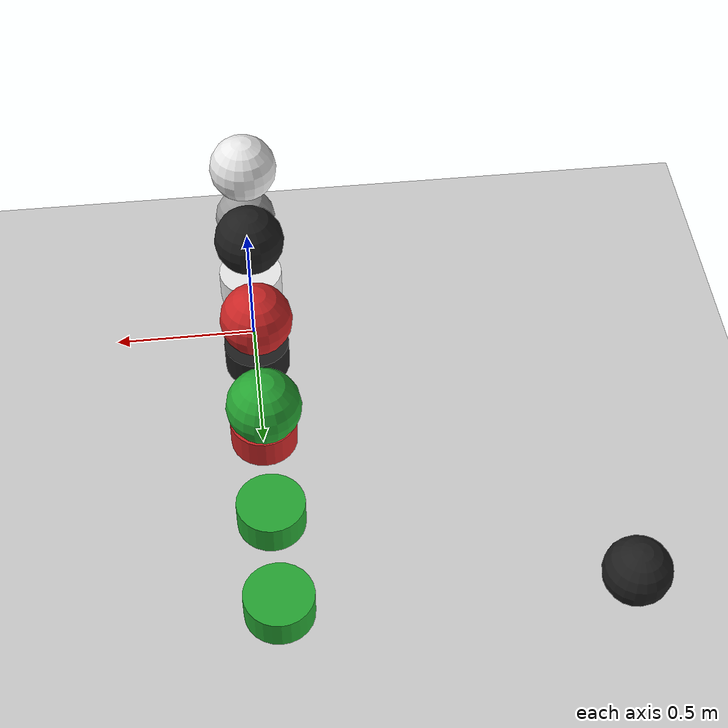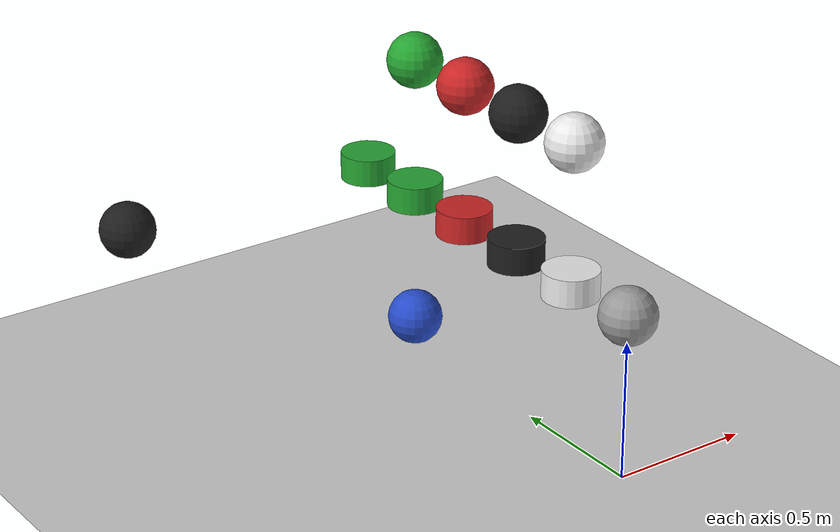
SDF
<?xml version="1.0" ?>
<sdf version="1.4">
  <world name="default">
    <scene>
      <ambient>0.5 0.5 0.5 1</ambient>
      <background>0.5 0.5 0.5 1</background>
      <shadows>false</shadows>
    </scene>
    <include>
      <uri>model://sun</uri>
    </include>
    <include>
      <uri>model://ground_plane</uri>
    </include>
    <physics type="ode">
      <gravity>0.0 0.0 -10.0</gravity>
      <ode>
        <solver>
          <type>quick</type>
          <iters>100</iters>
          <sor>1.3</sor>
        </solver>
        <constraints>
          <cfm>0.0</cfm>
          <erp>1.0</erp>
          <contact_max_correcting_vel>10000.0</contact_max_correcting_vel>
          <contact_surface_layer>0.0</contact_surface_layer>
        </constraints>
      </ode>
      <simbody>
        <accuracy>0.01</accuracy>
        <max_transient_velocity>0.01</max_transient_velocity>
        <contact>
          <stiffness>111.111</stiffness>
          <dissipation>0</dissipation>
        </contact>
      </simbody>
      <real_time_update_rate>0</real_time_update_rate>
      <max_step_size>0.001</max_step_size>
    </physics>
    <model name="model_0">
      <pose>0.0 0.0 1.1 0 0.0 0.0</pose>
      <link name="link_1">
        <velocity_decay>
          <linear>0.0</linear>
          <angular>0.0</angular>
        </velocity_decay>
        <pose>0.0 0.0 0.0 0.0 0.0 0.0</pose>
        <inertial>
          <pose>0.0 0.0 -0.5 0.0 0.0 0.0</pose>
          <inertia>
            <ixx>0.01</ixx>
            <ixy>0.0</ixy>
            <ixz>0.0</ixz>
            <iyy>0.01</iyy>
            <iyz>0.0</iyz>
            <izz>0.01</izz>
          </inertia>
          <mass>1.0</mass>
        </inertial>
        <visual name="visual_sphere">
          <pose>0.0 0.0 -0.5 0.0 0.0 0.0</pose>
          <geometry>
            <sphere>
              <radius>0.1</radius>
            </sphere>
          </geometry>
          <material>
            <script><uri>file://media/materials/scripts/gazebo.material</uri><name>Gazebo/Grey</name></script>
          </material>
        </visual>
        <collision name="collision_sphere">
          <pose>0.0 0.0 -0.5 0.0 0.0 0.0</pose>
          <max_contacts>250</max_contacts>
          <geometry>
            <sphere>
              <radius>0.1</radius>
            </sphere>
          </geometry>
        </collision>
        <gravity>true</gravity>
        <self_collide>true</self_collide>
        <kinematic>false</kinematic>
      </link>
      <joint name="joint_0" type="prismatic">
        <parent>world</parent>
        <child>link_1</child>
        <pose>0.0 0.0 0.0 0.0 0.0 0.0</pose>
        <axis>
          <limit>
            <lower>0</lower>
            <upper>0</upper>
            <stiffness>1.0e6</stiffness>
            <dissipation>0</dissipation>
          </limit>
          <xyz>0.0 0.0 1.0</xyz>
        </axis>
        <physics>
          <ode>
            <limit>
              <cfm>0.0</cfm>
              <erp>0.2</erp>
            </limit>
          </ode>
        </physics>
      </joint>
      <static>false</static>
    </model>
    <model name="model_1_prismatic">
      <pose>0.0 0.3 1.1 0 0.0 0.0</pose>
      <link name="link_1">
        <velocity_decay>
          <linear>0.0</linear>
          <angular>0.0</angular>
        </velocity_decay>
        <pose>0.0 0.0 0.0 0.0 0.0 0.0</pose>
        <inertial>
          <pose>0.0 0.0 -0.5 0.0 0.0 0.0</pose>
          <inertia>
            <ixx>0.01</ixx>
            <ixy>0.0</ixy>
            <ixz>0.0</ixz>
            <iyy>0.01</iyy>
            <iyz>0.0</iyz>
            <izz>0.01</izz>
          </inertia>
          <mass>1.0</mass>
        </inertial>
        <visual name="visual_cylinder">
          <pose>0.0 0.0 -0.5 0.0 0.0 0.0</pose>
          <geometry>
            <cylinder>
              <length>0.1</length>
              <radius>0.1</radius>
            </cylinder>
          </geometry>
          <material>
            <script><uri>file://media/materials/scripts/gazebo.material</uri><name>Gazebo/White</name></script>
          </material>
        </visual>
        <collision name="collision_cylinder">
          <pose>0.0 0.0 -0.5 0.0 0.0 0.0</pose>
          <max_contacts>250</max_contacts>
          <geometry>
            <cylinder>
              <length>0.1</length>
              <radius>0.1</radius>
            </cylinder>
          </geometry>
        </collision>
        <gravity>true</gravity>
        <self_collide>true</self_collide>
        <kinematic>false</kinematic>
      </link>
      <joint name="joint_0" type="prismatic">
        <parent>world</parent>
        <child>link_1</child>
        <pose>0.0 0.0 0.0 0.0 0.0 0.0</pose>
        <axis>
          <limit>
            <lower>0.0</lower>
            <upper>0.0</upper>
            <stiffness>333.3333</stiffness>
            <dissipation>0</dissipation>
          </limit>
          <xyz>0.0 0.0 1.0</xyz>
        </axis>
        <physics>
          <ode>
            <limit>
              <cfm>3.0</cfm>
              <erp>1.0</erp>
            </limit>
          </ode>
        </physics>
      </joint>
      <static>false</static>
    </model>
    <model name="model_1_revolute">
      <pose>-1.0 0.3 1.1 0 0.0 0.0</pose>
      <link name="link_1">
        <velocity_decay>
          <linear>0.0</linear>
          <angular>0.0</angular>
        </velocity_decay>
        <pose>0.0 0.0 0.0 0.0 0.0 0.0</pose>
        <inertial>
          <pose>1.0 0.0 0 0.0 0.0 0.0</pose>
          <inertia>
            <ixx>0.0001</ixx>
            <ixy>0.0</ixy>
            <ixz>0.0</ixz>
            <iyy>0.0001</iyy>
            <iyz>0.0</iyz>
            <izz>0.0001</izz>
          </inertia>
          <mass>1.0</mass>
        </inertial>
        <visual name="visual_sphere">
          <pose>1.0 0.0 0 0.0 0.0 0.0</pose>
          <geometry>
            <sphere>
              <radius>0.1</radius>
            </sphere>
          </geometry>
          <material>
            <script><uri>file://media/materials/scripts/gazebo.material</uri><name>Gazebo/White</name></script>
          </material>
        </visual>
        <collision name="collision_sphere">
          <pose>1.0 0.0 0 0.0 0.0 0.0</pose>
          <max_contacts>250</max_contacts>
          <geometry>
            <sphere>
              <radius>0.1</radius>
            </sphere>
          </geometry>
        </collision>
        <gravity>true</gravity>
        <self_collide>true</self_collide>
        <kinematic>false</kinematic>
      </link>
      <joint name="joint_0" type="revolute">
        <parent>world</parent>
        <child>link_1</child>
        <pose>0.0 0.0 0.0 0.0 0.0 0.0</pose>
        <axis>
          <limit>
            <lower>0.0</lower>
            <upper>0.0</upper>
            <stiffness>333.3333</stiffness>
            <dissipation>0</dissipation>
          </limit>
          <xyz>0.0 1.0 0.0</xyz>
        </axis>
        <physics>
          <ode>
            <limit>
              <cfm>3.0</cfm>
              <erp>1.0</erp>
            </limit>
          </ode>
        </physics>
      </joint>
      <static>false</static>
    </model>
    <model name="model_2_prismatic">
      <pose>0.0 0.6 1.1 0 0.0 0.0</pose>
      <link name="link_1">
        <pose>0.0 0.0 0.0 0.0 0.0 0.0</pose>
        <inertial>
          <pose>0.0 0.0 -0.5 0.0 0.0 0.0</pose>
          <inertia>
            <ixx>0.01</ixx>
            <ixy>0.0</ixy>
            <ixz>0.0</ixz>
            <iyy>0.01</iyy>
            <iyz>0.0</iyz>
            <izz>0.01</izz>
          </inertia>
          <mass>1.0</mass>
        </inertial>
        <visual name="visual_cylinder">
          <pose>0.0 0.0 -0.5 0.0 0.0 0.0</pose>
          <geometry>
            <cylinder>
              <length>0.1</length>
              <radius>0.1</radius>
            </cylinder>
          </geometry>
          <material>
            <script><uri>file://media/materials/scripts/gazebo.material</uri><name>Gazebo/FlatBlack</name></script>
          </material>
        </visual>
        <collision name="collision_cylinder">
          <pose>0.0 0.0 -0.5 0.0 0.0 0.0</pose>
          <max_contacts>250</max_contacts>
          <geometry>
            <cylinder>
              <length>0.1</length>
              <radius>0.1</radius>
            </cylinder>
          </geometry>
        </collision>
        <gravity>true</gravity>
        <self_collide>true</self_collide>
        <kinematic>false</kinematic>
      </link>
      <joint name="joint_0" type="prismatic">
        <parent>world</parent>
        <child>link_1</child>
        <pose>0.0 0.0 0.0 0.0 0.0 0.0</pose>
        <axis>
          <limit>
            <lower>0</lower>
            <upper>0</upper>
            <stiffness>166.66667</stiffness>
            <dissipation>0</dissipation>
          </limit>
          <xyz>0.0 0.0 1.0</xyz>
        </axis>
        <physics>
          <ode>
            <limit>
              <cfm>6.0</cfm>
              <erp>1.0</erp>
            </limit>
          </ode>
        </physics>
      </joint>
      <static>false</static>
    </model>
    <model name="model_2_revolute">
      <pose>-1.0 0.6 1.1 0 0.0 0.0</pose>
      <link name="link_1">
        <pose>0.0 0.0 0.0 0.0 0.0 0.0</pose>
        <inertial>
          <pose>1.0 0.0 0 0.0 0.0 0.0</pose>
          <inertia>
            <ixx>0.01</ixx>
            <ixy>0.0</ixy>
            <ixz>0.0</ixz>
            <iyy>0.01</iyy>
            <iyz>0.0</iyz>
            <izz>0.01</izz>
          </inertia>
          <mass>1.0</mass>
        </inertial>
        <visual name="visual_sphere">
          <pose>1.0 0.0 0 0.0 0.0 0.0</pose>
          <geometry>
            <sphere>
              <radius>0.1</radius>
            </sphere>
          </geometry>
          <material>
            <script><uri>file://media/materials/scripts/gazebo.material</uri><name>Gazebo/FlatBlack</name></script>
          </material>
        </visual>
        <collision name="collision_sphere">
          <pose>1.0 0.0 0 0.0 0.0 0.0</pose>
          <max_contacts>250</max_contacts>
          <geometry>
            <sphere>
              <radius>0.1</radius>
            </sphere>
          </geometry>
        </collision>
        <gravity>true</gravity>
        <self_collide>true</self_collide>
        <kinematic>false</kinematic>
      </link>
      <joint name="joint_0" type="revolute">
        <parent>world</parent>
        <child>link_1</child>
        <pose>0.0 0.0 0.0 0.0 0.0 0.0</pose>
        <axis>
          <limit>
            <lower>0</lower>
            <upper>0</upper>
            <stiffness>166.66667</stiffness>
            <dissipation>0</dissipation>
          </limit>
          <xyz>0.0 1.0 0.0</xyz>
        </axis>
        <physics>
          <ode>
            <limit>
              <cfm>6.0</cfm>
              <erp>1.0</erp>
            </limit>
          </ode>
        </physics>
      </joint>
      <static>false</static>
    </model>
    <model name="model_3_prismatic">
      <pose>0.0 0.9 1.1 0 0.0 0.0</pose>
      <link name="link_1">
        <pose>0.0 0.0 0.0 0.0 0.0 0.0</pose>
        <inertial>
          <pose>0.0 0.0 -0.5 0.0 0.0 0.0</pose>
          <inertia>
            <ixx>0.01</ixx>
            <ixy>0.0</ixy>
            <ixz>0.0</ixz>
            <iyy>0.01</iyy>
            <iyz>0.0</iyz>
            <izz>0.01</izz>
          </inertia>
          <mass>1.0</mass>
        </inertial>
        <visual name="visual_cylinder">
          <pose>0.0 0.0 -0.5 0.0 0.0 0.0</pose>
          <geometry>
            <cylinder>
              <length>0.1</length>
              <radius>0.1</radius>
            </cylinder>
          </geometry>
          <material>
            <script><uri>file://media/materials/scripts/gazebo.material</uri><name>Gazebo/Red</name></script>
          </material>
        </visual>
        <collision name="collision_cylinder">
          <pose>0.0 0.0 -0.5 0.0 0.0 0.0</pose>
          <max_contacts>250</max_contacts>
          <geometry>
            <cylinder>
              <length>0.1</length>
              <radius>0.1</radius>
            </cylinder>
          </geometry>
        </collision>
        <gravity>true</gravity>
        <self_collide>true</self_collide>
        <kinematic>false</kinematic>
      </link>
      <joint name="joint_0" type="prismatic">
        <parent>world</parent>
        <child>link_1</child>
        <pose>0.0 0.0 0.0 0.0 0.0 0.0</pose>
        <axis>
          <limit>
            <lower>0</lower>
            <upper>0</upper>
            <stiffness>111.1111</stiffness>
            <dissipation>0</dissipation>
          </limit>
          <xyz>0.0 0.0 1.0</xyz>
        </axis>
        <physics>
          <ode>
            <limit>
              <cfm>9.0</cfm>
              <erp>1.0</erp>
            </limit>
          </ode>
        </physics>
      </joint>
      <static>false</static>
    </model>
    <model name="model_3_revolute">
      <pose>-1.0 0.9 1.1 0 0.0 0.0</pose>
      <link name="link_1">
        <pose>0.0 0.0 0.0 0.0 0.0 0.0</pose>
        <inertial>
          <pose>1.0 0.0 0 0.0 0.0 0.0</pose>
          <inertia>
            <ixx>0.01</ixx>
            <ixy>0.0</ixy>
            <ixz>0.0</ixz>
            <iyy>0.01</iyy>
            <iyz>0.0</iyz>
            <izz>0.01</izz>
          </inertia>
          <mass>1.0</mass>
        </inertial>
        <visual name="visual_sphere">
          <pose>1.0 0.0 0 0.0 0.0 0.0</pose>
          <geometry>
            <sphere>
              <radius>0.1</radius>
            </sphere>
          </geometry>
          <material>
            <script><uri>file://media/materials/scripts/gazebo.material</uri><name>Gazebo/Red</name></script>
          </material>
        </visual>
        <collision name="collision_sphere">
          <pose>1.0 0.0 0 0.0 0.0 0.0</pose>
          <max_contacts>250</max_contacts>
          <geometry>
            <sphere>
              <radius>0.1</radius>
            </sphere>
          </geometry>
        </collision>
        <gravity>true</gravity>
        <self_collide>true</self_collide>
        <kinematic>false</kinematic>
      </link>
      <joint name="joint_0" type="revolute">
        <parent>world</parent>
        <child>link_1</child>
        <pose>0.0 0.0 0.0 0.0 0.0 0.0</pose>
        <axis>
          <limit>
            <lower>0</lower>
            <upper>0</upper>
            <stiffness>111.1111</stiffness>
            <dissipation>0</dissipation>
          </limit>
          <xyz>0.0 1.0 0.0</xyz>
        </axis>
        <physics>
          <ode>
            <limit>
              <cfm>9.0</cfm>
              <erp>1.0</erp>
            </limit>
          </ode>
        </physics>
      </joint>
      <static>false</static>
    </model>
    <model name="model_4_prismatic_plugin">
      <pose>0.0 1.2 1.1 0 0.0 0.0</pose>
      <link name="link_1">
        <pose>0.0 0.0 0.0 0.0 0.0 0.0</pose>
        <inertial>
          <pose>0.0 0.0 -0.5 0.0 0.0 0.0</pose>
          <inertia>
            <ixx>0.01</ixx>
            <ixy>0.0</ixy>
            <ixz>0.0</ixz>
            <iyy>0.01</iyy>
            <iyz>0.0</iyz>
            <izz>0.01</izz>
          </inertia>
          <mass>1.0</mass>
        </inertial>
        <visual name="visual_cylinder">
          <pose>0.0 0.0 -0.5 0.0 0.0 0.0</pose>
          <geometry>
            <cylinder>
              <length>0.1</length>
              <radius>0.1</radius>
            </cylinder>
          </geometry>
          <material>
            <script><uri>file://media/materials/scripts/gazebo.material</uri><name>Gazebo/Green</name></script>
          </material>
        </visual>
        <collision name="collision_cylinder">
          <pose>0.0 0.0 -0.5 0.0 0.0 0.0</pose>
          <max_contacts>250</max_contacts>
          <geometry>
            <cylinder>
              <length>0.1</length>
              <radius>0.1</radius>
            </cylinder>
          </geometry>
        </collision>
        <gravity>true</gravity>
        <self_collide>true</self_collide>
        <kinematic>false</kinematic>
      </link>
      <joint name="joint_0" type="prismatic">
        <parent>world</parent>
        <child>link_1</child>
        <pose>0.0 0.0 0.0 0.0 0.0 0.0</pose>
        <axis>
          <limit>
            <lower>-1.0</lower>
            <upper>1.0</upper>
          </limit>
          <xyz>0.0 0.0 1.0</xyz>
        </axis>
      </joint>
      <link name="link_2">
        <pose>0.0 0.0 0.5 0.0 0.0 0.0</pose>
        <inertial>
          <pose>0.0 0.0 -0.5 0.0 0.0 0.0</pose>
          <inertia>
            <ixx>0.01</ixx>
            <ixy>0.0</ixy>
            <ixz>0.0</ixz>
            <iyy>0.01</iyy>
            <iyz>0.0</iyz>
            <izz>0.01</izz>
          </inertia>
          <mass>1.0</mass>
        </inertial>
        <visual name="visual_sphere">
          <pose>0.0 0.0 -0.5 0.0 0.0 0.0</pose>
          <geometry>
            <sphere>
              <radius>0.1</radius>
            </sphere>
          </geometry>
          <material>
            <script><uri>file://media/materials/scripts/gazebo.material</uri><name>Gazebo/Green</name></script>
          </material>
        </visual>
        <collision name="collision_sphere">
          <pose>0.0 0.0 -0.5 0.0 0.0 0.0</pose>
          <max_contacts>250</max_contacts>
          <geometry>
            <sphere>
              <radius>0.1</radius>
            </sphere>
          </geometry>
        </collision>
        <gravity>true</gravity>
        <self_collide>true</self_collide>
        <kinematic>false</kinematic>
      </link>
      <joint name="joint_1" type="prismatic">
        <parent>world</parent>
        <child>link_2</child>
        <pose>0.0 0.0 0.0 0.0 0.0 0.0</pose>
        <axis>
          <limit>
            <lower>-1.0</lower>
            <upper>1.0</upper>
          </limit>
          <xyz>0.0 0.0 1.0</xyz>
        </axis>
      </joint>
      <plugin name="spring_test" filename="libSpringTestPlugin.so">
        <joint_explicit>joint_0</joint_explicit>
        <kp_explicit>111.1111</kp_explicit>
        <kd_explicit>0</kd_explicit>
        <joint_implicit>joint_1</joint_implicit>
        <kp_implicit>111.1111</kp_implicit>
        <kd_implicit>0</kd_implicit>
      </plugin>
      <static>false</static>
    </model>
    <model name="model_5_soft_contact">
      <pose>0.0 1.2 0.0 0 0.0 0.0</pose>
      <link name="link_1">
        <pose>0.0 0.0 0.0 0.0 0.0 0.0</pose>
        <inertial>
          <pose>0.0 0.0 0.05 0.0 0.0 0.0</pose>
          <inertia>
            <ixx>0.01</ixx>
            <ixy>0.0</ixy>
            <ixz>0.0</ixz>
            <iyy>0.01</iyy>
            <iyz>0.0</iyz>
            <izz>0.01</izz>
          </inertia>
          <mass>1.0</mass>
        </inertial>
        <visual name="visual_sphere">
          <pose>0.0 0.0 0.1 0.0 0.0 0.0</pose>
          <geometry>
            <sphere>
              <radius>0.1</radius>
            </sphere>
          </geometry>
          <material>
            <script><uri>file://media/materials/scripts/gazebo.material</uri><name>Gazebo/Blue</name></script>
          </material>
        </visual>
        <collision name="collision_sphere">
          <pose>0.0 0.0 0.1 0.0 0.0 0.0</pose>
          <max_contacts>250</max_contacts>
          <geometry>
            <sphere>
              <radius>0.1</radius>
            </sphere>
          </geometry>
          <surface>
            <friction>
              <ode>
                <mu>0.2</mu>
                <mu2>0.2</mu2>
                <fdir1>1.0 0 0</fdir1>
                <slip1>0</slip1>
                <slip2>0</slip2>
              </ode>
            </friction>
            <contact>
              <ode>
                <kp>111.1111</kp>
                <kd>0.0</kd>
                <max_vel>10000.0</max_vel>
                <min_depth>0.0</min_depth>
              </ode>
            </contact>
          </surface>
        </collision>
        <gravity>true</gravity>
        <self_collide>true</self_collide>
        <kinematic>false</kinematic>
      </link>
      <static>false</static>
    </model>
    <model name="model_6_prismatic_sdf">
      <pose>0.0 1.5 0.6  0 0 0</pose>
      <link name="link">
        <inertial>
          <inertia>
            <ixx>0.01</ixx>
            <ixy>0.0</ixy>
            <ixz>0.0</ixz>
            <iyy>0.01</iyy>
            <iyz>0.0</iyz>
            <izz>0.01</izz>
          </inertia>
          <mass>1.0</mass>
        </inertial>
        <visual name="visual">
          <geometry>
            <cylinder>
              <length>0.1</length>
              <radius>0.1</radius>
            </cylinder>
          </geometry>
          <material>
            <script><uri>file://media/materials/scripts/gazebo.material</uri><name>Gazebo/Green</name></script>
          </material>
        </visual>
        <collision name="collision">
          <geometry>
            <cylinder>
              <length>0.1</length>
              <radius>0.1</radius>
            </cylinder>
          </geometry>
        </collision>
      </link>
      <joint name="joint" type="prismatic">
        <parent>world</parent>
        <child>link</child>
        <pose>0.0 0.0 0.5  0 0 0</pose>
        <axis>
          <limit>
            <lower>-1.0</lower>
            <upper>1.0</upper>
          </limit>
          <xyz>0.0 0.0 1.0</xyz>
          <dynamics>
            <spring_stiffness>111.1111</spring_stiffness>
            <spring_reference>0.0</spring_reference>
            <damping>0.0</damping>
          </dynamics>
        </axis>
      </joint>
    </model>
    <model name="model_7_revolute_sdf">
      <pose>-1.0 1.5 0.6  0 0 0</pose>
      <link name="link">
        <inertial>
          <inertia>
            <ixx>0.01</ixx>
            <ixy>0.0</ixy>
            <ixz>0.0</ixz>
            <iyy>0.01</iyy>
            <iyz>0.0</iyz>
            <izz>0.01</izz>
          </inertia>
          <mass>1.0</mass>
        </inertial>
        <visual name="visual">
          <geometry>
            <sphere>
              <radius>0.1</radius>
            </sphere>
          </geometry>
          <material>
            <script><uri>file://media/materials/scripts/gazebo.material</uri><name>Gazebo/FlatBlack</name></script>
          </material>
        </visual>
        <collision name="collision">
          <geometry>
            <sphere>
              <radius>0.1</radius>
            </sphere>
          </geometry>
        </collision>
      </link>
      <joint name="joint" type="revolute">
        <parent>world</parent>
        <child>link</child>
        <pose>-1.0 0.0 0.0  0 0 0</pose>
        <axis>
          <limit>
            <lower>-10</lower>
            <upper>10</upper>
          </limit>
          <xyz>0.0 1.0 0.0</xyz>
          <dynamics>
            <spring_stiffness>111.1111</spring_stiffness>
            <spring_reference>0.0</spring_reference>
            <damping>0.0</damping>
          </dynamics>
        </axis>
      </joint>
    </model>
  </world>
</sdf>
Footer
